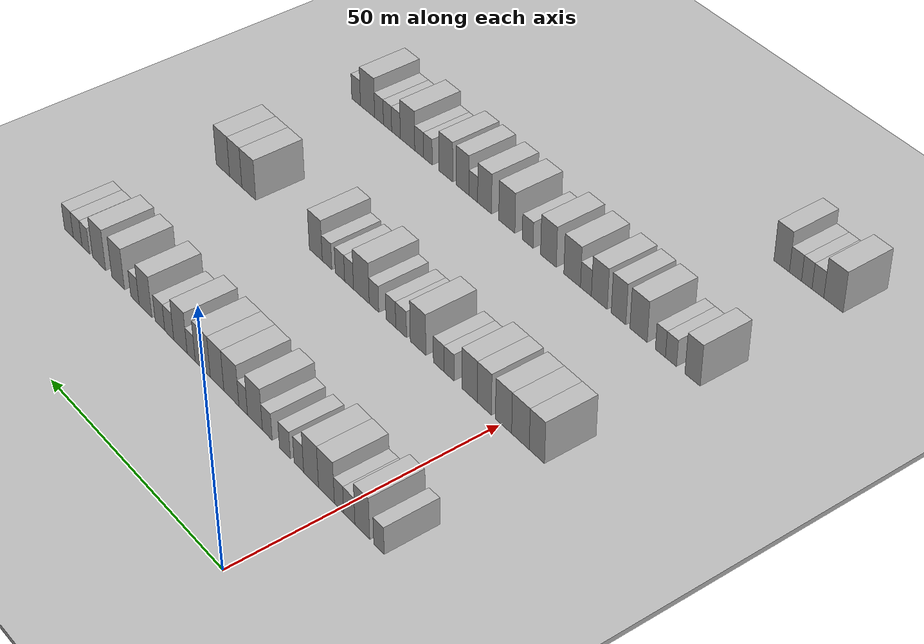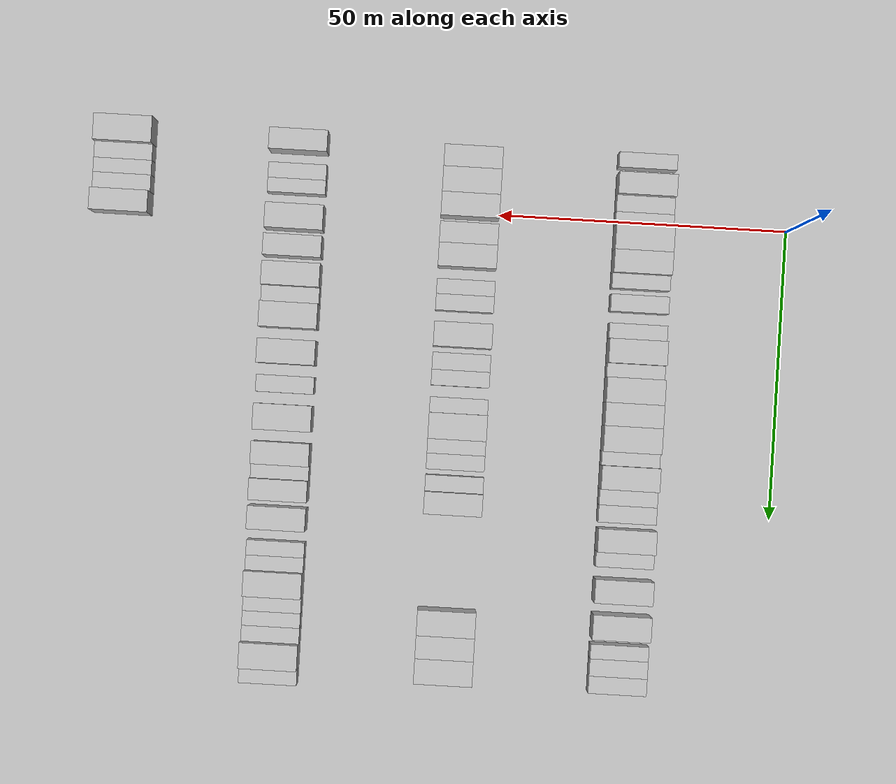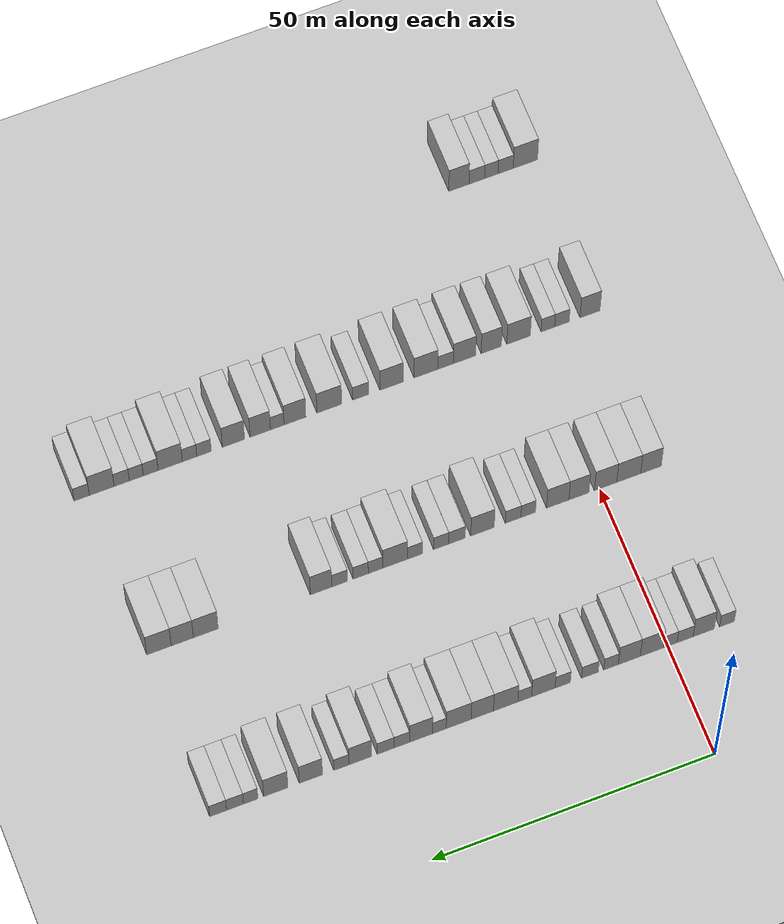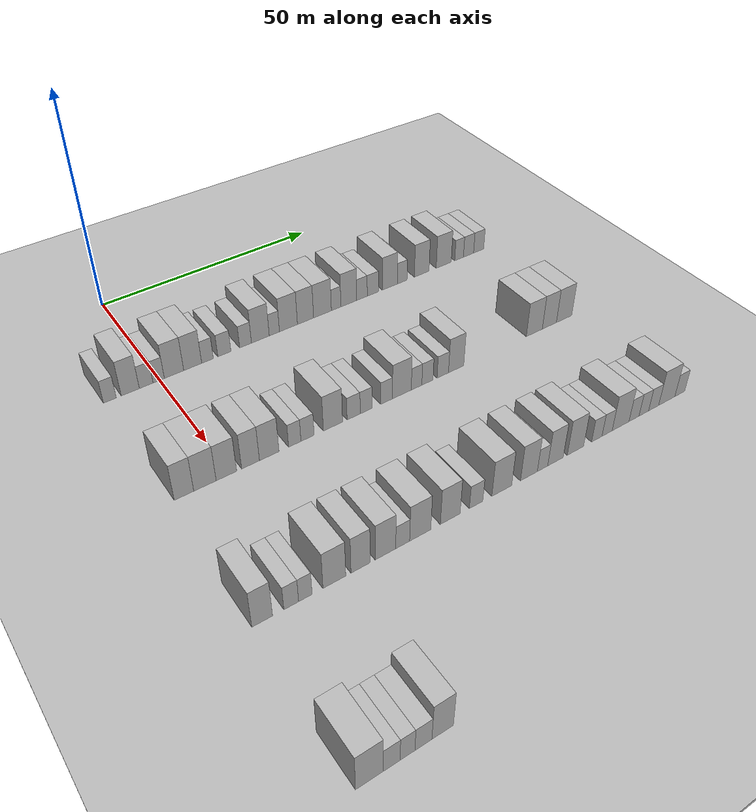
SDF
<sdf version="1.6">
 <world name="default">
  <include><name>ground_plane_1</name><uri>model://HANNAS_ground_plane</uri></include>
  <include>
   <name>ground_plane_2</name>
   <uri>model://HANNAS_ground_plane</uri>
   <pose>100 0 0  0 0 0</pose>
  </include>
  <model name="building_103">
   <static>1</static>
   <pose>25.0000 -10.4722 0 0.000000 0.000000 0.000000</pose>
   <link name="link">
    <pose>0 0 3.00 0 0 0</pose>
    <collision name="collision"><geometry><box><size>10.0000 2.6297 6.0000</size></box></geometry></collision>
    <visual name="visual">
     <cast_shadows>0</cast_shadows>
     <geometry><box><size>10.0000 2.6297 6.0000</size></box></geometry>
     <material>
      <script>
       <uri>model://HANNAS_wall/materials/scripts</uri>
       <uri>model://HANNAS_wall/materials/textures</uri>
       <name>vrc/HANNAS_wall</name>
      </script>
     </material>
    </visual>
   </link>
  </model>
  <model name="building_104">
   <static>1</static>
   <pose>25.0000 -6.2794 0 0.000000 0.000000 0.000000</pose>
   <link name="link">
    <pose>0 0 4.50 0 0 0</pose>
    <collision name="collision"><geometry><box><size>10.0000 3.7560 9.0000</size></box></geometry></collision>
    <visual name="visual">
     <cast_shadows>0</cast_shadows>
     <geometry><box><size>10.0000 3.7560 9.0000</size></box></geometry>
     <material>
      <script>
       <uri>model://HANNAS_wall/materials/scripts</uri>
       <uri>model://HANNAS_wall/materials/textures</uri>
       <name>vrc/HANNAS_wall</name>
      </script>
     </material>
    </visual>
   </link>
  </model>
  <model name="building_105">
   <static>1</static>
   <pose>25.0000 -2.9628 0 0.000000 0.000000 0.000000</pose>
   <link name="link">
    <pose>0 0 3.00 0 0 0</pose>
    <collision name="collision"><geometry><box><size>10.0000 2.8772 6.0000</size></box></geometry></collision>
    <visual name="visual">
     <cast_shadows>0</cast_shadows>
     <geometry><box><size>10.0000 2.8772 6.0000</size></box></geometry>
     <material>
      <script>
       <uri>model://HANNAS_wall/materials/scripts</uri>
       <uri>model://HANNAS_wall/materials/textures</uri>
       <name>vrc/HANNAS_wall</name>
      </script>
     </material>
    </visual>
   </link>
  </model>
  <model name="building_106">
   <static>1</static>
   <pose>25.0000 -0.3181 0 0.000000 0.000000 0.000000</pose>
   <link name="link">
    <pose>0 0 3.00 0 0 0</pose>
    <collision name="collision"><geometry><box><size>10.0000 2.4121 6.0000</size></box></geometry></collision>
    <visual name="visual">
     <cast_shadows>0</cast_shadows>
     <geometry><box><size>10.0000 2.4121 6.0000</size></box></geometry>
     <material>
      <script>
       <uri>model://HANNAS_wall/materials/scripts</uri>
       <uri>model://HANNAS_wall/materials/textures</uri>
       <name>vrc/HANNAS_wall</name>
      </script>
     </material>
    </visual>
   </link>
  </model>
  <model name="building_107">
   <static>1</static>
   <pose>25.0000 2.9778 0 0.000000 0.000000 0.000000</pose>
   <link name="link">
    <pose>0 0 4.50 0 0 0</pose>
    <collision name="collision"><geometry><box><size>10.0000 4.1798 9.0000</size></box></geometry></collision>
    <visual name="visual">
     <cast_shadows>0</cast_shadows>
     <geometry><box><size>10.0000 4.1798 9.0000</size></box></geometry>
     <material>
      <script>
       <uri>model://HANNAS_wall/materials/scripts</uri>
       <uri>model://HANNAS_wall/materials/textures</uri>
       <name>vrc/HANNAS_wall</name>
      </script>
     </material>
    </visual>
   </link>
  </model>
  <model name="building_108">
   <static>1</static>
   <pose>25.0000 7.0445 0 0.000000 0.000000 0.000000</pose>
   <link name="link">
    <pose>0 0 4.50 0 0 0</pose>
    <collision name="collision"><geometry><box><size>10.0000 3.9534 9.0000</size></box></geometry></collision>
    <visual name="visual">
     <cast_shadows>0</cast_shadows>
     <geometry><box><size>10.0000 3.9534 9.0000</size></box></geometry>
     <material>
      <script>
       <uri>model://HANNAS_wall/materials/scripts</uri>
       <uri>model://HANNAS_wall/materials/textures</uri>
       <name>vrc/HANNAS_wall</name>
      </script>
     </material>
    </visual>
   </link>
  </model>
  <model name="building_109">
   <static>1</static>
   <pose>25.0000 10.3143 0 0.000000 0.000000 0.000000</pose>
   <link name="link">
    <pose>0 0 3.00 0 0 0</pose>
    <collision name="collision"><geometry><box><size>10.0000 2.5862 6.0000</size></box></geometry></collision>
    <visual name="visual">
     <cast_shadows>0</cast_shadows>
     <geometry><box><size>10.0000 2.5862 6.0000</size></box></geometry>
     <material>
      <script>
       <uri>model://HANNAS_wall/materials/scripts</uri>
       <uri>model://HANNAS_wall/materials/textures</uri>
       <name>vrc/HANNAS_wall</name>
      </script>
     </material>
    </visual>
   </link>
  </model>
  <model name="building_110">
   <static>1</static>
   <pose>25.0000 14.0972 0 0.000000 0.000000 0.000000</pose>
   <link name="link">
    <pose>0 0 3.00 0 0 0</pose>
    <collision name="collision"><geometry><box><size>10.0000 2.9797 6.0000</size></box></geometry></collision>
    <visual name="visual">
     <cast_shadows>0</cast_shadows>
     <geometry><box><size>10.0000 2.9797 6.0000</size></box></geometry>
     <material>
      <script>
       <uri>model://HANNAS_wall/materials/scripts</uri>
       <uri>model://HANNAS_wall/materials/textures</uri>
       <name>vrc/HANNAS_wall</name>
      </script>
     </material>
    </visual>
   </link>
  </model>
  <model name="building_111">
   <static>1</static>
   <pose>25.0000 18.9458 0 0.000000 0.000000 0.000000</pose>
   <link name="link">
    <pose>0 0 3.00 0 0 0</pose>
    <collision name="collision"><geometry><box><size>10.0000 2.7174 6.0000</size></box></geometry></collision>
    <visual name="visual">
     <cast_shadows>0</cast_shadows>
     <geometry><box><size>10.0000 2.7174 6.0000</size></box></geometry>
     <material>
      <script>
       <uri>model://HANNAS_wall/materials/scripts</uri>
       <uri>model://HANNAS_wall/materials/textures</uri>
       <name>vrc/HANNAS_wall</name>
      </script>
     </material>
    </visual>
   </link>
  </model>
  <model name="building_112">
   <static>1</static>
   <pose>25.0000 22.3938 0 0.000000 0.000000 0.000000</pose>
   <link name="link">
    <pose>0 0 4.50 0 0 0</pose>
    <collision name="collision"><geometry><box><size>10.0000 4.1786 9.0000</size></box></geometry></collision>
    <visual name="visual">
     <cast_shadows>0</cast_shadows>
     <geometry><box><size>10.0000 4.1786 9.0000</size></box></geometry>
     <material>
      <script>
       <uri>model://HANNAS_wall/materials/scripts</uri>
       <uri>model://HANNAS_wall/materials/textures</uri>
       <name>vrc/HANNAS_wall</name>
      </script>
     </material>
    </visual>
   </link>
  </model>
  <model name="building_113">
   <static>1</static>
   <pose>25.0000 25.6976 0 0.000000 0.000000 0.000000</pose>
   <link name="link">
    <pose>0 0 3.00 0 0 0</pose>
    <collision name="collision"><geometry><box><size>10.0000 2.4290 6.0000</size></box></geometry></collision>
    <visual name="visual">
     <cast_shadows>0</cast_shadows>
     <geometry><box><size>10.0000 2.4290 6.0000</size></box></geometry>
     <material>
      <script>
       <uri>model://HANNAS_wall/materials/scripts</uri>
       <uri>model://HANNAS_wall/materials/textures</uri>
       <name>vrc/HANNAS_wall</name>
      </script>
     </material>
    </visual>
   </link>
  </model>
  <model name="building_114">
   <static>1</static>
   <pose>25.0000 29.0792 0 0.000000 0.000000 0.000000</pose>
   <link name="link">
    <pose>0 0 4.50 0 0 0</pose>
    <collision name="collision"><geometry><box><size>10.0000 4.3342 9.0000</size></box></geometry></collision>
    <visual name="visual">
     <cast_shadows>0</cast_shadows>
     <geometry><box><size>10.0000 4.3342 9.0000</size></box></geometry>
     <material>
      <script>
       <uri>model://HANNAS_wall/materials/scripts</uri>
       <uri>model://HANNAS_wall/materials/textures</uri>
       <name>vrc/HANNAS_wall</name>
      </script>
     </material>
    </visual>
   </link>
  </model>
  <model name="building_115">
   <static>1</static>
   <pose>25.0000 33.2281 0 0.000000 0.000000 0.000000</pose>
   <link name="link">
    <pose>0 0 4.50 0 0 0</pose>
    <collision name="collision"><geometry><box><size>10.0000 3.9637 9.0000</size></box></geometry></collision>
    <visual name="visual">
     <cast_shadows>0</cast_shadows>
     <geometry><box><size>10.0000 3.9637 9.0000</size></box></geometry>
     <material>
      <script>
       <uri>model://HANNAS_wall/materials/scripts</uri>
       <uri>model://HANNAS_wall/materials/textures</uri>
       <name>vrc/HANNAS_wall</name>
      </script>
     </material>
    </visual>
   </link>
  </model>
  <model name="building_116">
   <static>1</static>
   <pose>25.0000 37.4271 0 0.000000 0.000000 0.000000</pose>
   <link name="link">
    <pose>0 0 4.50 0 0 0</pose>
    <collision name="collision"><geometry><box><size>10.0000 4.4342 9.0000</size></box></geometry></collision>
    <visual name="visual">
     <cast_shadows>0</cast_shadows>
     <geometry><box><size>10.0000 4.4342 9.0000</size></box></geometry>
     <material>
      <script>
       <uri>model://HANNAS_wall/materials/scripts</uri>
       <uri>model://HANNAS_wall/materials/textures</uri>
       <name>vrc/HANNAS_wall</name>
      </script>
     </material>
    </visual>
   </link>
  </model>
  <model name="building_117">
   <static>1</static>
   <pose>25.0000 40.8475 0 0.000000 0.000000 0.000000</pose>
   <link name="link">
    <pose>0 0 3.00 0 0 0</pose>
    <collision name="collision"><geometry><box><size>10.0000 2.4067 6.0000</size></box></geometry></collision>
    <visual name="visual">
     <cast_shadows>0</cast_shadows>
     <geometry><box><size>10.0000 2.4067 6.0000</size></box></geometry>
     <material>
      <script>
       <uri>model://HANNAS_wall/materials/scripts</uri>
       <uri>model://HANNAS_wall/materials/textures</uri>
       <name>vrc/HANNAS_wall</name>
      </script>
     </material>
    </visual>
   </link>
  </model>
  <model name="building_118">
   <static>1</static>
   <pose>25.0000 44.0835 0 0.000000 0.000000 0.000000</pose>
   <link name="link">
    <pose>0 0 4.50 0 0 0</pose>
    <collision name="collision"><geometry><box><size>10.0000 4.0652 9.0000</size></box></geometry></collision>
    <visual name="visual">
     <cast_shadows>0</cast_shadows>
     <geometry><box><size>10.0000 4.0652 9.0000</size></box></geometry>
     <material>
      <script>
       <uri>model://HANNAS_wall/materials/scripts</uri>
       <uri>model://HANNAS_wall/materials/textures</uri>
       <name>vrc/HANNAS_wall</name>
      </script>
     </material>
    </visual>
   </link>
  </model>
  <model name="building_119">
   <static>1</static>
   <pose>25.0000 47.4851 0 0.000000 0.000000 0.000000</pose>
   <link name="link">
    <pose>0 0 3.00 0 0 0</pose>
    <collision name="collision"><geometry><box><size>10.0000 2.7381 6.0000</size></box></geometry></collision>
    <visual name="visual">
     <cast_shadows>0</cast_shadows>
     <geometry><box><size>10.0000 2.7381 6.0000</size></box></geometry>
     <material>
      <script>
       <uri>model://HANNAS_wall/materials/scripts</uri>
       <uri>model://HANNAS_wall/materials/textures</uri>
       <name>vrc/HANNAS_wall</name>
      </script>
     </material>
    </visual>
   </link>
  </model>
  <model name="building_120">
   <static>1</static>
   <pose>25.0000 50.3392 0 0.000000 0.000000 0.000000</pose>
   <link name="link">
    <pose>0 0 3.00 0 0 0</pose>
    <collision name="collision"><geometry><box><size>10.0000 2.9700 6.0000</size></box></geometry></collision>
    <visual name="visual">
     <cast_shadows>0</cast_shadows>
     <geometry><box><size>10.0000 2.9700 6.0000</size></box></geometry>
     <material>
      <script>
       <uri>model://HANNAS_wall/materials/scripts</uri>
       <uri>model://HANNAS_wall/materials/textures</uri>
       <name>vrc/HANNAS_wall</name>
      </script>
     </material>
    </visual>
   </link>
  </model>
  <model name="building_121">
   <static>1</static>
   <pose>25.0000 54.8275 0 0.000000 0.000000 0.000000</pose>
   <link name="link">
    <pose>0 0 4.50 0 0 0</pose>
    <collision name="collision"><geometry><box><size>10.0000 4.0067 9.0000</size></box></geometry></collision>
    <visual name="visual">
     <cast_shadows>0</cast_shadows>
     <geometry><box><size>10.0000 4.0067 9.0000</size></box></geometry>
     <material>
      <script>
       <uri>model://HANNAS_wall/materials/scripts</uri>
       <uri>model://HANNAS_wall/materials/textures</uri>
       <name>vrc/HANNAS_wall</name>
      </script>
     </material>
    </visual>
   </link>
  </model>
  <model name="building_122">
   <static>1</static>
   <pose>25.0000 58.1501 0 0.000000 0.000000 0.000000</pose>
   <link name="link">
    <pose>0 0 3.00 0 0 0</pose>
    <collision name="collision"><geometry><box><size>10.0000 2.6386 6.0000</size></box></geometry></collision>
    <visual name="visual">
     <cast_shadows>0</cast_shadows>
     <geometry><box><size>10.0000 2.6386 6.0000</size></box></geometry>
     <material>
      <script>
       <uri>model://HANNAS_wall/materials/scripts</uri>
       <uri>model://HANNAS_wall/materials/textures</uri>
       <name>vrc/HANNAS_wall</name>
      </script>
     </material>
    </visual>
   </link>
  </model>
  <model name="building_123">
   <static>1</static>
   <pose>25.0000 63.5026 0 0.000000 0.000000 0.000000</pose>
   <link name="link">
    <pose>0 0 4.50 0 0 0</pose>
    <collision name="collision"><geometry><box><size>10.0000 4.0663 9.0000</size></box></geometry></collision>
    <visual name="visual">
     <cast_shadows>0</cast_shadows>
     <geometry><box><size>10.0000 4.0663 9.0000</size></box></geometry>
     <material>
      <script>
       <uri>model://HANNAS_wall/materials/scripts</uri>
       <uri>model://HANNAS_wall/materials/textures</uri>
       <name>vrc/HANNAS_wall</name>
      </script>
     </material>
    </visual>
   </link>
  </model>
  <model name="building_124">
   <static>1</static>
   <pose>25.0000 69.6663 0 0.000000 0.000000 0.000000</pose>
   <link name="link">
    <pose>0 0 4.50 0 0 0</pose>
    <collision name="collision"><geometry><box><size>10.0000 4.2613 9.0000</size></box></geometry></collision>
    <visual name="visual">
     <cast_shadows>0</cast_shadows>
     <geometry><box><size>10.0000 4.2613 9.0000</size></box></geometry>
     <material>
      <script>
       <uri>model://HANNAS_wall/materials/scripts</uri>
       <uri>model://HANNAS_wall/materials/textures</uri>
       <name>vrc/HANNAS_wall</name>
      </script>
     </material>
    </visual>
   </link>
  </model>
  <model name="building_125">
   <static>1</static>
   <pose>25.0000 74.0546 0 0.000000 0.000000 0.000000</pose>
   <link name="link">
    <pose>0 0 3.00 0 0 0</pose>
    <collision name="collision"><geometry><box><size>10.0000 2.5152 6.0000</size></box></geometry></collision>
    <visual name="visual">
     <cast_shadows>0</cast_shadows>
     <geometry><box><size>10.0000 2.5152 6.0000</size></box></geometry>
     <material>
      <script>
       <uri>model://HANNAS_wall/materials/scripts</uri>
       <uri>model://HANNAS_wall/materials/textures</uri>
       <name>vrc/HANNAS_wall</name>
      </script>
     </material>
    </visual>
   </link>
  </model>
  <model name="building_126">
   <static>1</static>
   <pose>25.0000 76.7923 0 0.000000 0.000000 0.000000</pose>
   <link name="link">
    <pose>0 0 3.00 0 0 0</pose>
    <collision name="collision"><geometry><box><size>10.0000 2.9602 6.0000</size></box></geometry></collision>
    <visual name="visual">
     <cast_shadows>0</cast_shadows>
     <geometry><box><size>10.0000 2.9602 6.0000</size></box></geometry>
     <material>
      <script>
       <uri>model://HANNAS_wall/materials/scripts</uri>
       <uri>model://HANNAS_wall/materials/textures</uri>
       <name>vrc/HANNAS_wall</name>
      </script>
     </material>
    </visual>
   </link>
  </model>
  <model name="building_127">
   <static>1</static>
   <pose>25.0000 79.7556 0 0.000000 0.000000 0.000000</pose>
   <link name="link">
    <pose>0 0 3.00 0 0 0</pose>
    <collision name="collision"><geometry><box><size>10.0000 2.9662 6.0000</size></box></geometry></collision>
    <visual name="visual">
     <cast_shadows>0</cast_shadows>
     <geometry><box><size>10.0000 2.9662 6.0000</size></box></geometry>
     <material>
      <script>
       <uri>model://HANNAS_wall/materials/scripts</uri>
       <uri>model://HANNAS_wall/materials/textures</uri>
       <name>vrc/HANNAS_wall</name>
      </script>
     </material>
    </visual>
   </link>
  </model>
  <model name="building_338">
   <static>1</static>
   <pose>55.0000 -9.1968 0 0.000000 0.000000 0.000000</pose>
   <link name="link">
    <pose>0 0 4.50 0 0 0</pose>
    <collision name="collision"><geometry><box><size>10.0000 3.7291 9.0000</size></box></geometry></collision>
    <visual name="visual">
     <cast_shadows>0</cast_shadows>
     <geometry><box><size>10.0000 3.7291 9.0000</size></box></geometry>
     <material>
      <script>
       <uri>model://HANNAS_wall/materials/scripts</uri>
       <uri>model://HANNAS_wall/materials/textures</uri>
       <name>vrc/HANNAS_wall</name>
      </script>
     </material>
    </visual>
   </link>
  </model>
  <model name="building_339">
   <static>1</static>
   <pose>55.0000 -5.1632 0 0.000000 0.000000 0.000000</pose>
   <link name="link">
    <pose>0 0 4.50 0 0 0</pose>
    <collision name="collision"><geometry><box><size>10.0000 4.3381 9.0000</size></box></geometry></collision>
    <visual name="visual">
     <cast_shadows>0</cast_shadows>
     <geometry><box><size>10.0000 4.3381 9.0000</size></box></geometry>
     <material>
      <script>
       <uri>model://HANNAS_wall/materials/scripts</uri>
       <uri>model://HANNAS_wall/materials/textures</uri>
       <name>vrc/HANNAS_wall</name>
      </script>
     </material>
    </visual>
   </link>
  </model>
  <model name="building_340">
   <static>1</static>
   <pose>55.0000 -0.9664 0 0.000000 0.000000 0.000000</pose>
   <link name="link">
    <pose>0 0 4.50 0 0 0</pose>
    <collision name="collision"><geometry><box><size>10.0000 4.0556 9.0000</size></box></geometry></collision>
    <visual name="visual">
     <cast_shadows>0</cast_shadows>
     <geometry><box><size>10.0000 4.0556 9.0000</size></box></geometry>
     <material>
      <script>
       <uri>model://HANNAS_wall/materials/scripts</uri>
       <uri>model://HANNAS_wall/materials/textures</uri>
       <name>vrc/HANNAS_wall</name>
      </script>
     </material>
    </visual>
   </link>
  </model>
  <model name="building_341">
   <static>1</static>
   <pose>55.0000 3.8646 0 0.000000 0.000000 0.000000</pose>
   <link name="link">
    <pose>0 0 4.50 0 0 0</pose>
    <collision name="collision"><geometry><box><size>10.0000 3.6064 9.0000</size></box></geometry></collision>
    <visual name="visual">
     <cast_shadows>0</cast_shadows>
     <geometry><box><size>10.0000 3.6064 9.0000</size></box></geometry>
     <material>
      <script>
       <uri>model://HANNAS_wall/materials/scripts</uri>
       <uri>model://HANNAS_wall/materials/textures</uri>
       <name>vrc/HANNAS_wall</name>
      </script>
     </material>
    </visual>
   </link>
  </model>
  <model name="building_342">
   <static>1</static>
   <pose>55.0000 7.6861 0 0.000000 0.000000 0.000000</pose>
   <link name="link">
    <pose>0 0 4.50 0 0 0</pose>
    <collision name="collision"><geometry><box><size>10.0000 4.0368 9.0000</size></box></geometry></collision>
    <visual name="visual">
     <cast_shadows>0</cast_shadows>
     <geometry><box><size>10.0000 4.0368 9.0000</size></box></geometry>
     <material>
      <script>
       <uri>model://HANNAS_wall/materials/scripts</uri>
       <uri>model://HANNAS_wall/materials/textures</uri>
       <name>vrc/HANNAS_wall</name>
      </script>
     </material>
    </visual>
   </link>
  </model>
  <model name="building_343">
   <static>1</static>
   <pose>55.0000 13.0122 0 0.000000 0.000000 0.000000</pose>
   <link name="link">
    <pose>0 0 3.00 0 0 0</pose>
    <collision name="collision"><geometry><box><size>10.0000 2.6154 6.0000</size></box></geometry></collision>
    <visual name="visual">
     <cast_shadows>0</cast_shadows>
     <geometry><box><size>10.0000 2.6154 6.0000</size></box></geometry>
     <material>
      <script>
       <uri>model://HANNAS_wall/materials/scripts</uri>
       <uri>model://HANNAS_wall/materials/textures</uri>
       <name>vrc/HANNAS_wall</name>
      </script>
     </material>
    </visual>
   </link>
  </model>
  <model name="building_344">
   <static>1</static>
   <pose>55.0000 15.7304 0 0.000000 0.000000 0.000000</pose>
   <link name="link">
    <pose>0 0 3.00 0 0 0</pose>
    <collision name="collision"><geometry><box><size>10.0000 2.8208 6.0000</size></box></geometry></collision>
    <visual name="visual">
     <cast_shadows>0</cast_shadows>
     <geometry><box><size>10.0000 2.8208 6.0000</size></box></geometry>
     <material>
      <script>
       <uri>model://HANNAS_wall/materials/scripts</uri>
       <uri>model://HANNAS_wall/materials/textures</uri>
       <name>vrc/HANNAS_wall</name>
      </script>
     </material>
    </visual>
   </link>
  </model>
  <model name="building_345">
   <static>1</static>
   <pose>55.0000 21.2547 0 0.000000 0.000000 0.000000</pose>
   <link name="link">
    <pose>0 0 4.50 0 0 0</pose>
    <collision name="collision"><geometry><box><size>10.0000 4.2279 9.0000</size></box></geometry></collision>
    <visual name="visual">
     <cast_shadows>0</cast_shadows>
     <geometry><box><size>10.0000 4.2279 9.0000</size></box></geometry>
     <material>
      <script>
       <uri>model://HANNAS_wall/materials/scripts</uri>
       <uri>model://HANNAS_wall/materials/textures</uri>
       <name>vrc/HANNAS_wall</name>
      </script>
     </material>
    </visual>
   </link>
  </model>
  <model name="building_346">
   <static>1</static>
   <pose>55.0000 25.8506 0 0.000000 0.000000 0.000000</pose>
   <link name="link">
    <pose>0 0 3.00 0 0 0</pose>
    <collision name="collision"><geometry><box><size>10.0000 2.9639 6.0000</size></box></geometry></collision>
    <visual name="visual">
     <cast_shadows>0</cast_shadows>
     <geometry><box><size>10.0000 2.9639 6.0000</size></box></geometry>
     <material>
      <script>
       <uri>model://HANNAS_wall/materials/scripts</uri>
       <uri>model://HANNAS_wall/materials/textures</uri>
       <name>vrc/HANNAS_wall</name>
      </script>
     </material>
    </visual>
   </link>
  </model>
  <model name="building_347">
   <static>1</static>
   <pose>55.0000 28.6829 0 0.000000 0.000000 0.000000</pose>
   <link name="link">
    <pose>0 0 3.00 0 0 0</pose>
    <collision name="collision"><geometry><box><size>10.0000 2.7005 6.0000</size></box></geometry></collision>
    <visual name="visual">
     <cast_shadows>0</cast_shadows>
     <geometry><box><size>10.0000 2.7005 6.0000</size></box></geometry>
     <material>
      <script>
       <uri>model://HANNAS_wall/materials/scripts</uri>
       <uri>model://HANNAS_wall/materials/textures</uri>
       <name>vrc/HANNAS_wall</name>
      </script>
     </material>
    </visual>
   </link>
  </model>
  <model name="building_348">
   <static>1</static>
   <pose>55.0000 33.3761 0 0.000000 0.000000 0.000000</pose>
   <link name="link">
    <pose>0 0 3.00 0 0 0</pose>
    <collision name="collision"><geometry><box><size>10.0000 2.6859 6.0000</size></box></geometry></collision>
    <visual name="visual">
     <cast_shadows>0</cast_shadows>
     <geometry><box><size>10.0000 2.6859 6.0000</size></box></geometry>
     <material>
      <script>
       <uri>model://HANNAS_wall/materials/scripts</uri>
       <uri>model://HANNAS_wall/materials/textures</uri>
       <name>vrc/HANNAS_wall</name>
      </script>
     </material>
    </visual>
   </link>
  </model>
  <model name="building_349">
   <static>1</static>
   <pose>55.0000 36.9526 0 0.000000 0.000000 0.000000</pose>
   <link name="link">
    <pose>0 0 4.50 0 0 0</pose>
    <collision name="collision"><geometry><box><size>10.0000 4.4670 9.0000</size></box></geometry></collision>
    <visual name="visual">
     <cast_shadows>0</cast_shadows>
     <geometry><box><size>10.0000 4.4670 9.0000</size></box></geometry>
     <material>
      <script>
       <uri>model://HANNAS_wall/materials/scripts</uri>
       <uri>model://HANNAS_wall/materials/textures</uri>
       <name>vrc/HANNAS_wall</name>
      </script>
     </material>
    </visual>
   </link>
  </model>
  <model name="building_350">
   <static>1</static>
   <pose>55.0000 40.4554 0 0.000000 0.000000 0.000000</pose>
   <link name="link">
    <pose>0 0 3.00 0 0 0</pose>
    <collision name="collision"><geometry><box><size>10.0000 2.5386 6.0000</size></box></geometry></collision>
    <visual name="visual">
     <cast_shadows>0</cast_shadows>
     <geometry><box><size>10.0000 2.5386 6.0000</size></box></geometry>
     <material>
      <script>
       <uri>model://HANNAS_wall/materials/scripts</uri>
       <uri>model://HANNAS_wall/materials/textures</uri>
       <name>vrc/HANNAS_wall</name>
      </script>
     </material>
    </visual>
   </link>
  </model>
  <model name="building_351">
   <static>1</static>
   <pose>55.0000 43.0815 0 0.000000 0.000000 0.000000</pose>
   <link name="link">
    <pose>0 0 3.00 0 0 0</pose>
    <collision name="collision"><geometry><box><size>10.0000 2.7136 6.0000</size></box></geometry></collision>
    <visual name="visual">
     <cast_shadows>0</cast_shadows>
     <geometry><box><size>10.0000 2.7136 6.0000</size></box></geometry>
     <material>
      <script>
       <uri>model://HANNAS_wall/materials/scripts</uri>
       <uri>model://HANNAS_wall/materials/textures</uri>
       <name>vrc/HANNAS_wall</name>
      </script>
     </material>
    </visual>
   </link>
  </model>
  <model name="building_352">
   <static>1</static>
   <pose>55.0000 46.8415 0 0.000000 0.000000 0.000000</pose>
   <link name="link">
    <pose>0 0 3.00 0 0 0</pose>
    <collision name="collision"><geometry><box><size>10.0000 2.8065 6.0000</size></box></geometry></collision>
    <visual name="visual">
     <cast_shadows>0</cast_shadows>
     <geometry><box><size>10.0000 2.8065 6.0000</size></box></geometry>
     <material>
      <script>
       <uri>model://HANNAS_wall/materials/scripts</uri>
       <uri>model://HANNAS_wall/materials/textures</uri>
       <name>vrc/HANNAS_wall</name>
      </script>
     </material>
    </visual>
   </link>
  </model>
  <model name="building_353">
   <static>1</static>
   <pose>55.0000 50.1569 0 0.000000 0.000000 0.000000</pose>
   <link name="link">
    <pose>0 0 4.50 0 0 0</pose>
    <collision name="collision"><geometry><box><size>10.0000 3.8243 9.0000</size></box></geometry></collision>
    <visual name="visual">
     <cast_shadows>0</cast_shadows>
     <geometry><box><size>10.0000 3.8243 9.0000</size></box></geometry>
     <material>
      <script>
       <uri>model://HANNAS_wall/materials/scripts</uri>
       <uri>model://HANNAS_wall/materials/textures</uri>
       <name>vrc/HANNAS_wall</name>
      </script>
     </material>
    </visual>
   </link>
  </model>
  <model name="building_354">
   <static>1</static>
   <pose>55.0000 70.6380 0 0.000000 0.000000 0.000000</pose>
   <link name="link">
    <pose>0 0 4.50 0 0 0</pose>
    <collision name="collision"><geometry><box><size>10.0000 4.3793 9.0000</size></box></geometry></collision>
    <visual name="visual">
     <cast_shadows>0</cast_shadows>
     <geometry><box><size>10.0000 4.3793 9.0000</size></box></geometry>
     <material>
      <script>
       <uri>model://HANNAS_wall/materials/scripts</uri>
       <uri>model://HANNAS_wall/materials/textures</uri>
       <name>vrc/HANNAS_wall</name>
      </script>
     </material>
    </visual>
   </link>
  </model>
  <model name="building_355">
   <static>1</static>
   <pose>55.0000 74.7890 0 0.000000 0.000000 0.000000</pose>
   <link name="link">
    <pose>0 0 4.50 0 0 0</pose>
    <collision name="collision"><geometry><box><size>10.0000 3.9226 9.0000</size></box></geometry></collision>
    <visual name="visual">
     <cast_shadows>0</cast_shadows>
     <geometry><box><size>10.0000 3.9226 9.0000</size></box></geometry>
     <material>
      <script>
       <uri>model://HANNAS_wall/materials/scripts</uri>
       <uri>model://HANNAS_wall/materials/textures</uri>
       <name>vrc/HANNAS_wall</name>
      </script>
     </material>
    </visual>
   </link>
  </model>
  <model name="building_356">
   <static>1</static>
   <pose>55.0000 78.9145 0 0.000000 0.000000 0.000000</pose>
   <link name="link">
    <pose>0 0 4.50 0 0 0</pose>
    <collision name="collision"><geometry><box><size>10.0000 4.3285 9.0000</size></box></geometry></collision>
    <visual name="visual">
     <cast_shadows>0</cast_shadows>
     <geometry><box><size>10.0000 4.3285 9.0000</size></box></geometry>
     <material>
      <script>
       <uri>model://HANNAS_wall/materials/scripts</uri>
       <uri>model://HANNAS_wall/materials/textures</uri>
       <name>vrc/HANNAS_wall</name>
      </script>
     </material>
    </visual>
   </link>
  </model>
  <model name="building_563">
   <static>1</static>
   <pose>85.0000 -10.3621 0 0.000000 0.000000 0.000000</pose>
   <link name="link">
    <pose>0 0 4.50 0 0 0</pose>
    <collision name="collision"><geometry><box><size>10.0000 3.6427 9.0000</size></box></geometry></collision>
    <visual name="visual">
     <cast_shadows>0</cast_shadows>
     <geometry><box><size>10.0000 3.6427 9.0000</size></box></geometry>
     <material>
      <script>
       <uri>model://HANNAS_wall/materials/scripts</uri>
       <uri>model://HANNAS_wall/materials/textures</uri>
       <name>vrc/HANNAS_wall</name>
      </script>
     </material>
    </visual>
   </link>
  </model>
  <model name="building_564">
   <static>1</static>
   <pose>85.0000 -5.2099 0 0.000000 0.000000 0.000000</pose>
   <link name="link">
    <pose>0 0 3.00 0 0 0</pose>
    <collision name="collision"><geometry><box><size>10.0000 2.6618 6.0000</size></box></geometry></collision>
    <visual name="visual">
     <cast_shadows>0</cast_shadows>
     <geometry><box><size>10.0000 2.6618 6.0000</size></box></geometry>
     <material>
      <script>
       <uri>model://HANNAS_wall/materials/scripts</uri>
       <uri>model://HANNAS_wall/materials/textures</uri>
       <name>vrc/HANNAS_wall</name>
      </script>
     </material>
    </visual>
   </link>
  </model>
  <model name="building_565">
   <static>1</static>
   <pose>85.0000 -2.6511 0 0.000000 0.000000 0.000000</pose>
   <link name="link">
    <pose>0 0 3.00 0 0 0</pose>
    <collision name="collision"><geometry><box><size>10.0000 2.4558 6.0000</size></box></geometry></collision>
    <visual name="visual">
     <cast_shadows>0</cast_shadows>
     <geometry><box><size>10.0000 2.4558 6.0000</size></box></geometry>
     <material>
      <script>
       <uri>model://HANNAS_wall/materials/scripts</uri>
       <uri>model://HANNAS_wall/materials/textures</uri>
       <name>vrc/HANNAS_wall</name>
      </script>
     </material>
    </visual>
   </link>
  </model>
  <model name="building_566">
   <static>1</static>
   <pose>85.0000 2.7191 0 0.000000 0.000000 0.000000</pose>
   <link name="link">
    <pose>0 0 4.50 0 0 0</pose>
    <collision name="collision"><geometry><box><size>10.0000 4.2847 9.0000</size></box></geometry></collision>
    <visual name="visual">
     <cast_shadows>0</cast_shadows>
     <geometry><box><size>10.0000 4.2847 9.0000</size></box></geometry>
     <material>
      <script>
       <uri>model://HANNAS_wall/materials/scripts</uri>
       <uri>model://HANNAS_wall/materials/textures</uri>
       <name>vrc/HANNAS_wall</name>
      </script>
     </material>
    </visual>
   </link>
  </model>
  <model name="building_567">
   <static>1</static>
   <pose>85.0000 7.7020 0 0.000000 0.000000 0.000000</pose>
   <link name="link">
    <pose>0 0 4.50 0 0 0</pose>
    <collision name="collision"><geometry><box><size>10.0000 3.6810 9.0000</size></box></geometry></collision>
    <visual name="visual">
     <cast_shadows>0</cast_shadows>
     <geometry><box><size>10.0000 3.6810 9.0000</size></box></geometry>
     <material>
      <script>
       <uri>model://HANNAS_wall/materials/scripts</uri>
       <uri>model://HANNAS_wall/materials/textures</uri>
       <name>vrc/HANNAS_wall</name>
      </script>
     </material>
    </visual>
   </link>
  </model>
  <model name="building_568">
   <static>1</static>
   <pose>85.0000 12.5746 0 0.000000 0.000000 0.000000</pose>
   <link name="link">
    <pose>0 0 4.50 0 0 0</pose>
    <collision name="collision"><geometry><box><size>10.0000 4.0643 9.0000</size></box></geometry></collision>
    <visual name="visual">
     <cast_shadows>0</cast_shadows>
     <geometry><box><size>10.0000 4.0643 9.0000</size></box></geometry>
     <material>
      <script>
       <uri>model://HANNAS_wall/materials/scripts</uri>
       <uri>model://HANNAS_wall/materials/textures</uri>
       <name>vrc/HANNAS_wall</name>
      </script>
     </material>
    </visual>
   </link>
  </model>
  <model name="building_569">
   <static>1</static>
   <pose>85.0000 16.0113 0 0.000000 0.000000 0.000000</pose>
   <link name="link">
    <pose>0 0 3.00 0 0 0</pose>
    <collision name="collision"><geometry><box><size>10.0000 2.8091 6.0000</size></box></geometry></collision>
    <visual name="visual">
     <cast_shadows>0</cast_shadows>
     <geometry><box><size>10.0000 2.8091 6.0000</size></box></geometry>
     <material>
      <script>
       <uri>model://HANNAS_wall/materials/scripts</uri>
       <uri>model://HANNAS_wall/materials/textures</uri>
       <name>vrc/HANNAS_wall</name>
      </script>
     </material>
    </visual>
   </link>
  </model>
  <model name="building_570">
   <static>1</static>
   <pose>85.0000 19.5896 0 0.000000 0.000000 0.000000</pose>
   <link name="link">
    <pose>0 0 4.50 0 0 0</pose>
    <collision name="collision"><geometry><box><size>10.0000 4.3476 9.0000</size></box></geometry></collision>
    <visual name="visual">
     <cast_shadows>0</cast_shadows>
     <geometry><box><size>10.0000 4.3476 9.0000</size></box></geometry>
     <material>
      <script>
       <uri>model://HANNAS_wall/materials/scripts</uri>
       <uri>model://HANNAS_wall/materials/textures</uri>
       <name>vrc/HANNAS_wall</name>
      </script>
     </material>
    </visual>
   </link>
  </model>
  <model name="building_571">
   <static>1</static>
   <pose>85.0000 25.8583 0 0.000000 0.000000 0.000000</pose>
   <link name="link">
    <pose>0 0 4.50 0 0 0</pose>
    <collision name="collision"><geometry><box><size>10.0000 4.1897 9.0000</size></box></geometry></collision>
    <visual name="visual">
     <cast_shadows>0</cast_shadows>
     <geometry><box><size>10.0000 4.1897 9.0000</size></box></geometry>
     <material>
      <script>
       <uri>model://HANNAS_wall/materials/scripts</uri>
       <uri>model://HANNAS_wall/materials/textures</uri>
       <name>vrc/HANNAS_wall</name>
      </script>
     </material>
    </visual>
   </link>
  </model>
  <model name="building_572">
   <static>1</static>
   <pose>85.0000 31.4206 0 0.000000 0.000000 0.000000</pose>
   <link name="link">
    <pose>0 0 3.00 0 0 0</pose>
    <collision name="collision"><geometry><box><size>10.0000 2.9349 6.0000</size></box></geometry></collision>
    <visual name="visual">
     <cast_shadows>0</cast_shadows>
     <geometry><box><size>10.0000 2.9349 6.0000</size></box></geometry>
     <material>
      <script>
       <uri>model://HANNAS_wall/materials/scripts</uri>
       <uri>model://HANNAS_wall/materials/textures</uri>
       <name>vrc/HANNAS_wall</name>
      </script>
     </material>
    </visual>
   </link>
  </model>
  <model name="building_573">
   <static>1</static>
   <pose>85.0000 37.1226 0 0.000000 0.000000 0.000000</pose>
   <link name="link">
    <pose>0 0 4.50 0 0 0</pose>
    <collision name="collision"><geometry><box><size>10.0000 4.4692 9.0000</size></box></geometry></collision>
    <visual name="visual">
     <cast_shadows>0</cast_shadows>
     <geometry><box><size>10.0000 4.4692 9.0000</size></box></geometry>
     <material>
      <script>
       <uri>model://HANNAS_wall/materials/scripts</uri>
       <uri>model://HANNAS_wall/materials/textures</uri>
       <name>vrc/HANNAS_wall</name>
      </script>
     </material>
    </visual>
   </link>
  </model>
  <model name="building_574">
   <static>1</static>
   <pose>85.0000 43.3165 0 0.000000 0.000000 0.000000</pose>
   <link name="link">
    <pose>0 0 4.50 0 0 0</pose>
    <collision name="collision"><geometry><box><size>10.0000 3.9186 9.0000</size></box></geometry></collision>
    <visual name="visual">
     <cast_shadows>0</cast_shadows>
     <geometry><box><size>10.0000 3.9186 9.0000</size></box></geometry>
     <material>
      <script>
       <uri>model://HANNAS_wall/materials/scripts</uri>
       <uri>model://HANNAS_wall/materials/textures</uri>
       <name>vrc/HANNAS_wall</name>
      </script>
     </material>
    </visual>
   </link>
  </model>
  <model name="building_575">
   <static>1</static>
   <pose>85.0000 46.5030 0 0.000000 0.000000 0.000000</pose>
   <link name="link">
    <pose>0 0 3.00 0 0 0</pose>
    <collision name="collision"><geometry><box><size>10.0000 2.4543 6.0000</size></box></geometry></collision>
    <visual name="visual">
     <cast_shadows>0</cast_shadows>
     <geometry><box><size>10.0000 2.4543 6.0000</size></box></geometry>
     <material>
      <script>
       <uri>model://HANNAS_wall/materials/scripts</uri>
       <uri>model://HANNAS_wall/materials/textures</uri>
       <name>vrc/HANNAS_wall</name>
      </script>
     </material>
    </visual>
   </link>
  </model>
  <model name="building_576">
   <static>1</static>
   <pose>85.0000 49.5658 0 0.000000 0.000000 0.000000</pose>
   <link name="link">
    <pose>0 0 4.50 0 0 0</pose>
    <collision name="collision"><geometry><box><size>10.0000 3.6712 9.0000</size></box></geometry></collision>
    <visual name="visual">
     <cast_shadows>0</cast_shadows>
     <geometry><box><size>10.0000 3.6712 9.0000</size></box></geometry>
     <material>
      <script>
       <uri>model://HANNAS_wall/materials/scripts</uri>
       <uri>model://HANNAS_wall/materials/textures</uri>
       <name>vrc/HANNAS_wall</name>
      </script>
     </material>
    </visual>
   </link>
  </model>
  <model name="building_577">
   <static>1</static>
   <pose>85.0000 54.3928 0 0.000000 0.000000 0.000000</pose>
   <link name="link">
    <pose>0 0 4.50 0 0 0</pose>
    <collision name="collision"><geometry><box><size>10.0000 3.9828 9.0000</size></box></geometry></collision>
    <visual name="visual">
     <cast_shadows>0</cast_shadows>
     <geometry><box><size>10.0000 3.9828 9.0000</size></box></geometry>
     <material>
      <script>
       <uri>model://HANNAS_wall/materials/scripts</uri>
       <uri>model://HANNAS_wall/materials/textures</uri>
       <name>vrc/HANNAS_wall</name>
      </script>
     </material>
    </visual>
   </link>
  </model>
  <model name="building_578">
   <static>1</static>
   <pose>85.0000 59.6844 0 0.000000 0.000000 0.000000</pose>
   <link name="link">
    <pose>0 0 3.00 0 0 0</pose>
    <collision name="collision"><geometry><box><size>10.0000 2.6005 6.0000</size></box></geometry></collision>
    <visual name="visual">
     <cast_shadows>0</cast_shadows>
     <geometry><box><size>10.0000 2.6005 6.0000</size></box></geometry>
     <material>
      <script>
       <uri>model://HANNAS_wall/materials/scripts</uri>
       <uri>model://HANNAS_wall/materials/textures</uri>
       <name>vrc/HANNAS_wall</name>
      </script>
     </material>
    </visual>
   </link>
  </model>
  <model name="building_579">
   <static>1</static>
   <pose>85.0000 62.2750 0 0.000000 0.000000 0.000000</pose>
   <link name="link">
    <pose>0 0 3.00 0 0 0</pose>
    <collision name="collision"><geometry><box><size>10.0000 2.5806 6.0000</size></box></geometry></collision>
    <visual name="visual">
     <cast_shadows>0</cast_shadows>
     <geometry><box><size>10.0000 2.5806 6.0000</size></box></geometry>
     <material>
      <script>
       <uri>model://HANNAS_wall/materials/scripts</uri>
       <uri>model://HANNAS_wall/materials/textures</uri>
       <name>vrc/HANNAS_wall</name>
      </script>
     </material>
    </visual>
   </link>
  </model>
  <model name="building_580">
   <static>1</static>
   <pose>85.0000 65.7393 0 0.000000 0.000000 0.000000</pose>
   <link name="link">
    <pose>0 0 4.50 0 0 0</pose>
    <collision name="collision"><geometry><box><size>10.0000 4.3481 9.0000</size></box></geometry></collision>
    <visual name="visual">
     <cast_shadows>0</cast_shadows>
     <geometry><box><size>10.0000 4.3481 9.0000</size></box></geometry>
     <material>
      <script>
       <uri>model://HANNAS_wall/materials/scripts</uri>
       <uri>model://HANNAS_wall/materials/textures</uri>
       <name>vrc/HANNAS_wall</name>
      </script>
     </material>
    </visual>
   </link>
  </model>
  <model name="building_581">
   <static>1</static>
   <pose>85.0000 69.2318 0 0.000000 0.000000 0.000000</pose>
   <link name="link">
    <pose>0 0 3.00 0 0 0</pose>
    <collision name="collision"><geometry><box><size>10.0000 2.6368 6.0000</size></box></geometry></collision>
    <visual name="visual">
     <cast_shadows>0</cast_shadows>
     <geometry><box><size>10.0000 2.6368 6.0000</size></box></geometry>
     <material>
      <script>
       <uri>model://HANNAS_wall/materials/scripts</uri>
       <uri>model://HANNAS_wall/materials/textures</uri>
       <name>vrc/HANNAS_wall</name>
      </script>
     </material>
    </visual>
   </link>
  </model>
  <model name="building_582">
   <static>1</static>
   <pose>85.0000 71.8076 0 0.000000 0.000000 0.000000</pose>
   <link name="link">
    <pose>0 0 3.00 0 0 0</pose>
    <collision name="collision"><geometry><box><size>10.0000 2.5148 6.0000</size></box></geometry></collision>
    <visual name="visual">
     <cast_shadows>0</cast_shadows>
     <geometry><box><size>10.0000 2.5148 6.0000</size></box></geometry>
     <material>
      <script>
       <uri>model://HANNAS_wall/materials/scripts</uri>
       <uri>model://HANNAS_wall/materials/textures</uri>
       <name>vrc/HANNAS_wall</name>
      </script>
     </material>
    </visual>
   </link>
  </model>
  <model name="building_583">
   <static>1</static>
   <pose>85.0000 74.4230 0 0.000000 0.000000 0.000000</pose>
   <link name="link">
    <pose>0 0 3.00 0 0 0</pose>
    <collision name="collision"><geometry><box><size>10.0000 2.7160 6.0000</size></box></geometry></collision>
    <visual name="visual">
     <cast_shadows>0</cast_shadows>
     <geometry><box><size>10.0000 2.7160 6.0000</size></box></geometry>
     <material>
      <script>
       <uri>model://HANNAS_wall/materials/scripts</uri>
       <uri>model://HANNAS_wall/materials/textures</uri>
       <name>vrc/HANNAS_wall</name>
      </script>
     </material>
    </visual>
   </link>
  </model>
  <model name="building_584">
   <static>1</static>
   <pose>85.0000 77.9952 0 0.000000 0.000000 0.000000</pose>
   <link name="link">
    <pose>0 0 4.50 0 0 0</pose>
    <collision name="collision"><geometry><box><size>10.0000 4.4284 9.0000</size></box></geometry></collision>
    <visual name="visual">
     <cast_shadows>0</cast_shadows>
     <geometry><box><size>10.0000 4.4284 9.0000</size></box></geometry>
     <material>
      <script>
       <uri>model://HANNAS_wall/materials/scripts</uri>
       <uri>model://HANNAS_wall/materials/textures</uri>
       <name>vrc/HANNAS_wall</name>
      </script>
     </material>
    </visual>
   </link>
  </model>
  <model name="building_585">
   <static>1</static>
   <pose>85.0000 81.5731 0 0.000000 0.000000 0.000000</pose>
   <link name="link">
    <pose>0 0 3.00 0 0 0</pose>
    <collision name="collision"><geometry><box><size>10.0000 2.7273 6.0000</size></box></geometry></collision>
    <visual name="visual">
     <cast_shadows>0</cast_shadows>
     <geometry><box><size>10.0000 2.7273 6.0000</size></box></geometry>
     <material>
      <script>
       <uri>model://HANNAS_wall/materials/scripts</uri>
       <uri>model://HANNAS_wall/materials/textures</uri>
       <name>vrc/HANNAS_wall</name>
      </script>
     </material>
    </visual>
   </link>
  </model>
  <model name="building_795">
   <static>1</static>
   <pose>115.0000 -10.5830 0 0.000000 0.000000 0.000000</pose>
   <link name="link">
    <pose>0 0 4.50 0 0 0</pose>
    <collision name="collision"><geometry><box><size>10.0000 4.4925 9.0000</size></box></geometry></collision>
    <visual name="visual">
     <cast_shadows>0</cast_shadows>
     <geometry><box><size>10.0000 4.4925 9.0000</size></box></geometry>
     <material>
      <script>
       <uri>model://HANNAS_wall/materials/scripts</uri>
       <uri>model://HANNAS_wall/materials/textures</uri>
       <name>vrc/HANNAS_wall</name>
      </script>
     </material>
    </visual>
   </link>
  </model>
  <model name="building_796">
   <static>1</static>
   <pose>115.0000 -6.9480 0 0.000000 0.000000 0.000000</pose>
   <link name="link">
    <pose>0 0 3.00 0 0 0</pose>
    <collision name="collision"><geometry><box><size>10.0000 2.7775 6.0000</size></box></geometry></collision>
    <visual name="visual">
     <cast_shadows>0</cast_shadows>
     <geometry><box><size>10.0000 2.7775 6.0000</size></box></geometry>
     <material>
      <script>
       <uri>model://HANNAS_wall/materials/scripts</uri>
       <uri>model://HANNAS_wall/materials/textures</uri>
       <name>vrc/HANNAS_wall</name>
      </script>
     </material>
    </visual>
   </link>
  </model>
  <model name="building_797">
   <static>1</static>
   <pose>115.0000 -4.3101 0 0.000000 0.000000 0.000000</pose>
   <link name="link">
    <pose>0 0 3.00 0 0 0</pose>
    <collision name="collision"><geometry><box><size>10.0000 2.4982 6.0000</size></box></geometry></collision>
    <visual name="visual">
     <cast_shadows>0</cast_shadows>
     <geometry><box><size>10.0000 2.4982 6.0000</size></box></geometry>
     <material>
      <script>
       <uri>model://HANNAS_wall/materials/scripts</uri>
       <uri>model://HANNAS_wall/materials/textures</uri>
       <name>vrc/HANNAS_wall</name>
      </script>
     </material>
    </visual>
   </link>
  </model>
  <model name="building_798">
   <static>1</static>
   <pose>115.0000 -1.6165 0 0.000000 0.000000 0.000000</pose>
   <link name="link">
    <pose>0 0 3.00 0 0 0</pose>
    <collision name="collision"><geometry><box><size>10.0000 2.8890 6.0000</size></box></geometry></collision>
    <visual name="visual">
     <cast_shadows>0</cast_shadows>
     <geometry><box><size>10.0000 2.8890 6.0000</size></box></geometry>
     <material>
      <script>
       <uri>model://HANNAS_wall/materials/scripts</uri>
       <uri>model://HANNAS_wall/materials/textures</uri>
       <name>vrc/HANNAS_wall</name>
      </script>
     </material>
    </visual>
   </link>
  </model>
  <model name="building_799">
   <static>1</static>
   <pose>115.0000 1.7013 0 0.000000 0.000000 0.000000</pose>
   <link name="link">
    <pose>0 0 4.50 0 0 0</pose>
    <collision name="collision"><geometry><box><size>10.0000 3.7465 9.0000</size></box></geometry></collision>
    <visual name="visual">
     <cast_shadows>0</cast_shadows>
     <geometry><box><size>10.0000 3.7465 9.0000</size></box></geometry>
     <material>
      <script>
       <uri>model://HANNAS_wall/materials/scripts</uri>
       <uri>model://HANNAS_wall/materials/textures</uri>
       <name>vrc/HANNAS_wall</name>
      </script>
     </material>
    </visual>
   </link>
  </model>
 </world>
</sdf>
